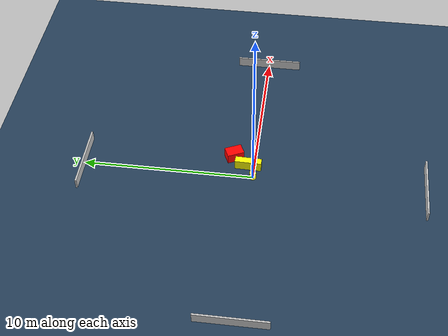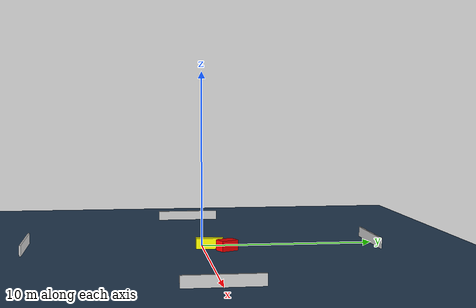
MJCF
<?xml version="1.0" ?>
<mujoco model="generated_environment">
  <option timestep="0.01" integrator="RK4" cone="elliptic"/>
  <default>
    <geom density="1"/>
  </default>
  <asset>
    <texture builtin="gradient" height="3072" name="skybox" rgb1="0.3 0.5 0.7" rgb2="0 0 0" type="skybox" width="512"/>
    <texture builtin="checker" height="300" name="groundplane" rgb1="0.2 0.3 0.4" rgb2="0.1 0.2 0.3" type="2d" width="300"/>
    <material name="groundplane" reflectance="0.2" texrepeat="5 5" texture="groundplane"/>
  </asset>
  <worldbody>
    <light dir="0 0 -1" directional="true" pos="0 0 1.5"/>
    <geom condim="3" friction="0.5 0.005 0.001" material="groundplane" name="floor" pos="0 0 0" size="0 0 0.05" type="plane"/>
    <body name="walls">
      <geom name="wall_1" condim="4" pos="-10.0 0.0 0.3" rgba="0.800000011920929 0.800000011920929 0.800000011920929 1.0" size="0.05 2.0 0.3" type="box"/>
      <geom name="wall_2" condim="4" pos="10.0 0.0 0.3" rgba="0.800000011920929 0.800000011920929 0.800000011920929 1.0" size="0.05 2.0 0.3" type="box"/>
      <geom name="wall_3" condim="4" pos="0.0 -10.0 0.3" rgba="0.800000011920929 0.800000011920929 0.800000011920929 1.0" size="2.0 0.05 0.3" type="box"/>
      <geom name="wall_4" condim="4" pos="0.0 10.0 0.3" rgba="0.800000011920929 0.800000011920929 0.800000011920929 1.0" size="2.0 0.05 0.3" type="box"/>
    </body>
    <body name="robot">
      <joint name="joint_x" type="slide" pos="0 0 0" axis="1 0 0"/>
      <joint name="joint_y" type="slide" pos="0 0 0" axis="0 1 0"/>
      <geom name="robot" type="cylinder" pos="0.0 0.0 0.2" size="0.2 0.2 0.0" mass="5.0" friction="1.0 0.005 0.0001" condim="4" rgba="1.0 1.0 0.0 1.0"/>
    </body>
    <body name="obstacle_1_movable">
      <geom name="obstacle_1_movable" condim="4" pos="0.802085394887986 0.3591209054353371 0.3" euler="0 0 178.3201553669696" friction="0.0 0.005 0.001" rgba="1.0 1.0 0.0 1.0" size="0.20996086035052053 0.7760770733885978 0.3" type="box" mass="0.1"/>
      <joint type="free"/>
    </body>
    <body name="obstacle_2_static">
      <geom name="obstacle_2_static" condim="4" pos="1.5034883850095877 1.2682562588060229 0.3" euler="0 0 115.1400185562004" friction="0.0 0.005 0.001" rgba="1.0 0.0 0.0 1.0" size="0.5064894961975508 0.34385954449911793 0.3" type="box"/>
    </body>
  </worldbody>
  <actuator>
    <motor name="actuator_x" joint="joint_x" gear="1" ctrlrange="-1 1"/>
    <motor name="actuator_y" joint="joint_y" gear="1" ctrlrange="-1 1"/>
  </actuator>
</mujoco>
